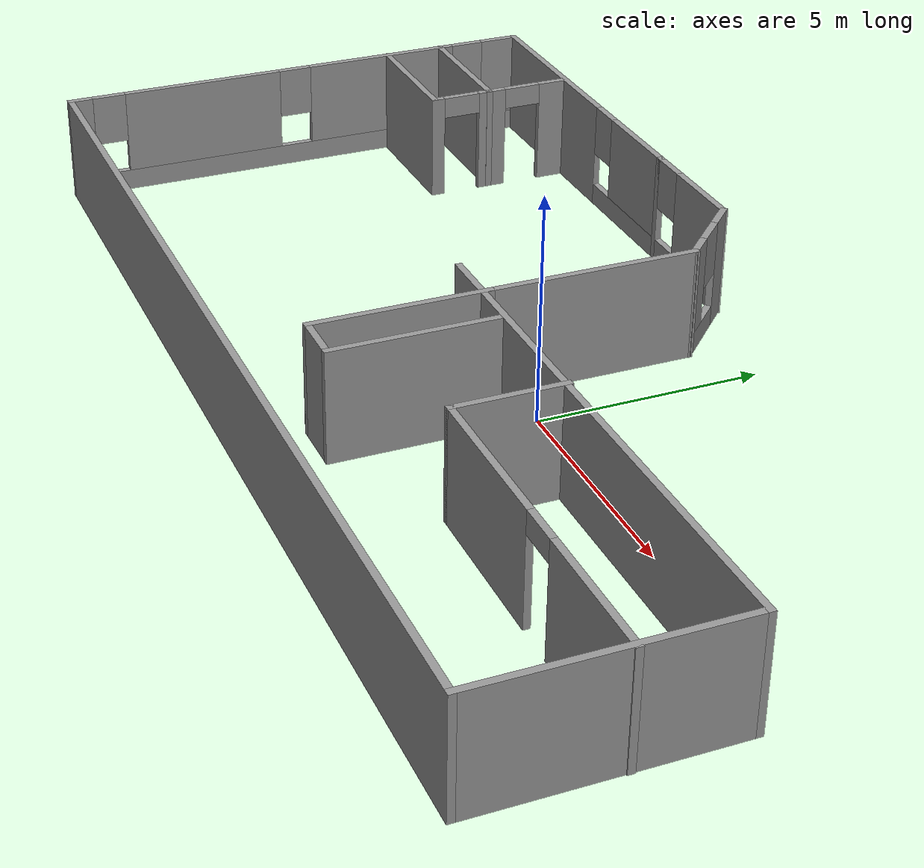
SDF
<?xml version='1.0'?>
<sdf version='1.7'>
  <model name='coffeeShop'>
    <pose>-1.8585 -0.230844 0 0 -0 0</pose>
    <link name='Wall_0'>
      <collision name='Wall_0_Collision'>
        <geometry>
          <box>
            <size>12.5 0.15 2.5</size>
          </box>
        </geometry>
        <pose>0 0 1.25 0 -0 0</pose>
      </collision>
      <visual name='Wall_0_Visual'>
        <pose>0 0 1.25 0 -0 0</pose>
        <geometry>
          <box>
            <size>12.5 0.15 2.5</size>
          </box>
        </geometry>
        <material>
          <script>
            <uri>file://media/materials/scripts/gazebo.material</uri>
            <name>Gazebo/Grey</name>
          </script>
          <ambient>1 1 1 1</ambient>
        </material>
        <meta>
          <layer>0</layer>
        </meta>
      </visual>
      <pose>5.61764 -0.465533 0 0 -0 0</pose>
    </link>
    <link name='Wall_13'>
      <pose>-0.114902 5.042 0 0 -0 -0.785398</pose>
      <visual name='Wall_13_Visual_0'>
        <pose>-0.748775 0 1.25 0 -0 0</pose>
        <geometry>
          <box>
            <size>0.752449 0.15 2.5</size>
          </box>
        </geometry>
        <material>
          <script>
            <uri>file://media/materials/scripts/gazebo.material</uri>
            <name>Gazebo/Grey</name>
          </script>
          <ambient>1 1 1 1</ambient>
        </material>
        <meta>
          <layer>0</layer>
        </meta>
      </visual>
      <collision name='Wall_13_Collision_0'>
        <geometry>
          <box>
            <size>0.752449 0.15 2.5</size>
          </box>
        </geometry>
        <pose>-0.748775 0 1.25 0 -0 0</pose>
      </collision>
      <visual name='Wall_13_Visual_1'>
        <pose>0.376225 0 0.25 0 -0 0</pose>
        <geometry>
          <box>
            <size>1.49755 0.15 0.5</size>
          </box>
        </geometry>
        <material>
          <script>
            <uri>file://media/materials/scripts/gazebo.material</uri>
            <name>Gazebo/Grey</name>
          </script>
          <ambient>1 1 1 1</ambient>
        </material>
        <meta>
          <layer>0</layer>
        </meta>
      </visual>
      <collision name='Wall_13_Collision_1'>
        <geometry>
          <box>
            <size>1.49755 0.15 0.5</size>
          </box>
        </geometry>
        <pose>0.376225 0 0.25 0 -0 0</pose>
      </collision>
      <visual name='Wall_13_Visual_2'>
        <pose>0.776225 0 1.5 0 -0 0</pose>
        <geometry>
          <box>
            <size>0.697551 0.15 2</size>
          </box>
        </geometry>
        <material>
          <script>
            <uri>file://media/materials/scripts/gazebo.material</uri>
            <name>Gazebo/Grey</name>
          </script>
          <ambient>1 1 1 1</ambient>
        </material>
        <meta>
          <layer>0</layer>
        </meta>
      </visual>
      <collision name='Wall_13_Collision_2'>
        <geometry>
          <box>
            <size>0.697551 0.15 2</size>
          </box>
        </geometry>
        <pose>0.776225 0 1.5 0 -0 0</pose>
      </collision>
      <visual name='Wall_13_Visual_3'>
        <pose>0.027449 0 1.9 0 -0 0</pose>
        <geometry>
          <box>
            <size>0.8 0.15 1.2</size>
          </box>
        </geometry>
        <material>
          <script>
            <uri>file://media/materials/scripts/gazebo.material</uri>
            <name>Gazebo/Grey</name>
          </script>
          <ambient>1 1 1 1</ambient>
        </material>
        <meta>
          <layer>0</layer>
        </meta>
      </visual>
      <collision name='Wall_13_Collision_3'>
        <geometry>
          <box>
            <size>0.8 0.15 1.2</size>
          </box>
        </geometry>
        <pose>0.027449 0 1.9 0 -0 0</pose>
      </collision>
    </link>
    <link name='Wall_14'>
      <collision name='Wall_14_Collision'>
        <geometry>
          <box>
            <size>4.75 0.15 2.5</size>
          </box>
        </geometry>
        <pose>0 0 1.25 0 -0 0</pose>
      </collision>
      <visual name='Wall_14_Visual'>
        <pose>0 0 1.25 0 -0 0</pose>
        <geometry>
          <box>
            <size>4.75 0.15 2.5</size>
          </box>
        </geometry>
        <material>
          <script>
            <uri>file://media/materials/scripts/gazebo.material</uri>
            <name>Gazebo/Grey</name>
          </script>
          <ambient>1 1 1 1</ambient>
        </material>
        <meta>
          <layer>0</layer>
        </meta>
      </visual>
      <pose>0.62756 1.99954 0 0 -0 -1.5708</pose>
    </link>
    <link name='Wall_16'>
      <collision name='Wall_16_Collision'>
        <geometry>
          <box>
            <size>2.5 0.15 2.5</size>
          </box>
        </geometry>
        <pose>0 0 1.25 0 -0 0</pose>
      </collision>
      <visual name='Wall_16_Visual'>
        <pose>0 0 1.25 0 -0 0</pose>
        <geometry>
          <box>
            <size>2.5 0.15 2.5</size>
          </box>
        </geometry>
        <material>
          <script>
            <uri>file://media/materials/scripts/gazebo.material</uri>
            <name>Gazebo/Grey</name>
          </script>
          <ambient>1 1 1 1</ambient>
        </material>
        <meta>
          <layer>0</layer>
        </meta>
      </visual>
      <pose>4.46826 -1.59552 0 0 -0 -1.5708</pose>
    </link>
    <link name='Wall_17'>
      <pose>8.14326 -2.77052 0 0 -0 0</pose>
      <visual name='Wall_17_Visual_0'>
        <pose>-1.97483 0 1.25 0 -0 0</pose>
        <geometry>
          <box>
            <size>3.55033 0.15 2.5</size>
          </box>
        </geometry>
        <material>
          <script>
            <uri>file://media/materials/scripts/gazebo.material</uri>
            <name>Gazebo/Grey</name>
          </script>
          <ambient>1 1 1 1</ambient>
        </material>
        <meta>
          <layer>0</layer>
        </meta>
      </visual>
      <collision name='Wall_17_Collision_0'>
        <geometry>
          <box>
            <size>3.55033 0.15 2.5</size>
          </box>
        </geometry>
        <pose>-1.97483 0 1.25 0 -0 0</pose>
      </collision>
      <visual name='Wall_17_Visual_1'>
        <pose>2.22517 0 1.25 0 -0 0</pose>
        <geometry>
          <box>
            <size>3.04967 0.15 2.5</size>
          </box>
        </geometry>
        <material>
          <script>
            <uri>file://media/materials/scripts/gazebo.material</uri>
            <name>Gazebo/Grey</name>
          </script>
          <ambient>1 1 1 1</ambient>
        </material>
        <meta>
          <layer>0</layer>
        </meta>
      </visual>
      <collision name='Wall_17_Collision_1'>
        <geometry>
          <box>
            <size>3.04967 0.15 2.5</size>
          </box>
        </geometry>
        <pose>2.22517 0 1.25 0 -0 0</pose>
      </collision>
      <visual name='Wall_17_Visual_2'>
        <pose>0.250333 0 2.25 0 -0 0</pose>
        <geometry>
          <box>
            <size>0.9 0.15 0.5</size>
          </box>
        </geometry>
        <material>
          <script>
            <uri>file://media/materials/scripts/gazebo.material</uri>
            <name>Gazebo/Grey</name>
          </script>
          <ambient>1 1 1 1</ambient>
        </material>
        <meta>
          <layer>0</layer>
        </meta>
      </visual>
      <collision name='Wall_17_Collision_2'>
        <geometry>
          <box>
            <size>0.9 0.15 0.5</size>
          </box>
        </geometry>
        <pose>0.250333 0 2.25 0 -0 0</pose>
      </collision>
    </link>
    <link name='Wall_19'>
      <collision name='Wall_19_Collision'>
        <geometry>
          <box>
            <size>4 0.15 2.5</size>
          </box>
        </geometry>
        <pose>0 0 1.25 0 -0 0</pose>
      </collision>
      <visual name='Wall_19_Visual'>
        <pose>0 0 1.25 0 -0 0</pose>
        <geometry>
          <box>
            <size>4 0.15 2.5</size>
          </box>
        </geometry>
        <material>
          <script>
            <uri>file://media/materials/scripts/gazebo.material</uri>
            <name>Gazebo/Grey</name>
          </script>
          <ambient>1 1 1 1</ambient>
        </material>
        <meta>
          <layer>0</layer>
        </meta>
      </visual>
      <pose>0.62756 -2.22546 0 0 -0 -1.5708</pose>
    </link>
    <link name='Wall_2'>
      <collision name='Wall_2_Collision'>
        <geometry>
          <box>
            <size>5.5 0.15 2.5</size>
          </box>
        </geometry>
        <pose>0 0 1.25 0 -0 0</pose>
      </collision>
      <visual name='Wall_2_Visual'>
        <pose>0 0 1.25 0 -0 0</pose>
        <geometry>
          <box>
            <size>5.5 0.15 2.5</size>
          </box>
        </geometry>
        <material>
          <script>
            <uri>file://media/materials/scripts/gazebo.material</uri>
            <name>Gazebo/Grey</name>
          </script>
          <ambient>1 1 1 1</ambient>
        </material>
        <meta>
          <layer>0</layer>
        </meta>
      </visual>
      <pose>11.7926 -3.14053 0 0 -0 -1.5708</pose>
    </link>
    <link name='Wall_20'>
      <collision name='Wall_20_Collision'>
        <geometry>
          <box>
            <size>1.25 0.15 2.5</size>
          </box>
        </geometry>
        <pose>0 0 1.25 0 -0 0</pose>
      </collision>
      <visual name='Wall_20_Visual'>
        <pose>0 0 1.25 0 -0 0</pose>
        <geometry>
          <box>
            <size>1.25 0.15 2.5</size>
          </box>
        </geometry>
        <material>
          <script>
            <uri>file://media/materials/scripts/gazebo.material</uri>
            <name>Gazebo/Grey</name>
          </script>
          <ambient>1 1 1 1</ambient>
        </material>
        <meta>
          <layer>0</layer>
        </meta>
      </visual>
      <pose>1.17756 -4.15046 0 0 -0 0</pose>
    </link>
    <link name='Wall_21'>
      <collision name='Wall_21_Collision'>
        <geometry>
          <box>
            <size>3.75 0.15 2.5</size>
          </box>
        </geometry>
        <pose>0 0 1.25 0 -0 0</pose>
      </collision>
      <visual name='Wall_21_Visual'>
        <pose>0 0 1.25 0 -0 0</pose>
        <geometry>
          <box>
            <size>3.75 0.15 2.5</size>
          </box>
        </geometry>
        <material>
          <script>
            <uri>file://media/materials/scripts/gazebo.material</uri>
            <name>Gazebo/Grey</name>
          </script>
          <ambient>1 1 1 1</ambient>
        </material>
        <meta>
          <layer>0</layer>
        </meta>
      </visual>
      <pose>1.72756 -2.35046 0 0 -0 1.5708</pose>
    </link>
    <link name='Wall_23'>
      <collision name='Wall_23_Collision'>
        <geometry>
          <box>
            <size>3.25 0.15 2.5</size>
          </box>
        </geometry>
        <pose>0 0 1.25 0 -0 0</pose>
      </collision>
      <visual name='Wall_23_Visual'>
        <pose>0 0 1.25 0 -0 0</pose>
        <geometry>
          <box>
            <size>3.25 0.15 2.5</size>
          </box>
        </geometry>
        <material>
          <script>
            <uri>file://media/materials/scripts/gazebo.material</uri>
            <name>Gazebo/Grey</name>
          </script>
          <ambient>1 1 1 1</ambient>
        </material>
        <meta>
          <layer>0</layer>
        </meta>
      </visual>
      <pose>-10.2683 2.31457 0 0 -0 0</pose>
    </link>
    <link name='Wall_24'>
      <pose>-8.71826 3.98957 0 0 -0 1.5708</pose>
      <visual name='Wall_24_Visual_0'>
        <pose>-1.58833 0 1.25 0 -0 0</pose>
        <geometry>
          <box>
            <size>0.323337 0.15 2.5</size>
          </box>
        </geometry>
        <material>
          <script>
            <uri>file://media/materials/scripts/gazebo.material</uri>
            <name>Gazebo/Grey</name>
          </script>
          <ambient>1 1 1 1</ambient>
        </material>
        <meta>
          <layer>0</layer>
        </meta>
      </visual>
      <collision name='Wall_24_Collision_0'>
        <geometry>
          <box>
            <size>0.323337 0.15 2.5</size>
          </box>
        </geometry>
        <pose>-1.58833 0 1.25 0 -0 0</pose>
      </collision>
      <visual name='Wall_24_Visual_1'>
        <pose>-0.180729 0 1.25 0 -0 0</pose>
        <geometry>
          <box>
            <size>0.691869 0.15 2.5</size>
          </box>
        </geometry>
        <material>
          <script>
            <uri>file://media/materials/scripts/gazebo.material</uri>
            <name>Gazebo/Grey</name>
          </script>
          <ambient>1 1 1 1</ambient>
        </material>
        <meta>
          <layer>0</layer>
        </meta>
      </visual>
      <collision name='Wall_24_Collision_1'>
        <geometry>
          <box>
            <size>0.691869 0.15 2.5</size>
          </box>
        </geometry>
        <pose>-0.180729 0 1.25 0 -0 0</pose>
      </collision>
      <visual name='Wall_24_Visual_2'>
        <pose>1.4076 0 1.25 0 -0 0</pose>
        <geometry>
          <box>
            <size>0.684794 0.15 2.5</size>
          </box>
        </geometry>
        <material>
          <script>
            <uri>file://media/materials/scripts/gazebo.material</uri>
            <name>Gazebo/Grey</name>
          </script>
          <ambient>1 1 1 1</ambient>
        </material>
        <meta>
          <layer>0</layer>
        </meta>
      </visual>
      <collision name='Wall_24_Collision_2'>
        <geometry>
          <box>
            <size>0.684794 0.15 2.5</size>
          </box>
        </geometry>
        <pose>1.4076 0 1.25 0 -0 0</pose>
      </collision>
      <visual name='Wall_24_Visual_3'>
        <pose>-0.976663 0 2.25 0 -0 0</pose>
        <geometry>
          <box>
            <size>0.9 0.15 0.5</size>
          </box>
        </geometry>
        <material>
          <script>
            <uri>file://media/materials/scripts/gazebo.material</uri>
            <name>Gazebo/Grey</name>
          </script>
          <ambient>1 1 1 1</ambient>
        </material>
        <meta>
          <layer>0</layer>
        </meta>
      </visual>
      <collision name='Wall_24_Collision_3'>
        <geometry>
          <box>
            <size>0.9 0.15 0.5</size>
          </box>
        </geometry>
        <pose>-0.976663 0 2.25 0 -0 0</pose>
      </collision>
      <visual name='Wall_24_Visual_4'>
        <pose>0.615206 0 2.25 0 -0 0</pose>
        <geometry>
          <box>
            <size>0.9 0.15 0.5</size>
          </box>
        </geometry>
        <material>
          <script>
            <uri>file://media/materials/scripts/gazebo.material</uri>
            <name>Gazebo/Grey</name>
          </script>
          <ambient>1 1 1 1</ambient>
        </material>
        <meta>
          <layer>0</layer>
        </meta>
      </visual>
      <collision name='Wall_24_Collision_4'>
        <geometry>
          <box>
            <size>0.9 0.15 0.5</size>
          </box>
        </geometry>
        <pose>0.615206 0 2.25 0 -0 0</pose>
      </collision>
    </link>
    <link name='Wall_3'>
      <collision name='Wall_3_Collision'>
        <geometry>
          <box>
            <size>23.75 0.15 2.5</size>
          </box>
        </geometry>
        <pose>0 0 1.25 0 -0 0</pose>
      </collision>
      <visual name='Wall_3_Visual'>
        <pose>0 0 1.25 0 -0 0</pose>
        <geometry>
          <box>
            <size>23.75 0.15 2.5</size>
          </box>
        </geometry>
        <material>
          <script>
            <uri>file://media/materials/scripts/gazebo.material</uri>
            <name>Gazebo/Grey</name>
          </script>
          <ambient>1 1 1 1</ambient>
        </material>
        <meta>
          <layer>0</layer>
        </meta>
      </visual>
      <pose>-0.007364 -5.81553 0 0 -0 3.14159</pose>
    </link>
    <link name='Wall_33'>
      <collision name='Wall_33_Collision'>
        <geometry>
          <box>
            <size>3.25 0.15 2.5</size>
          </box>
        </geometry>
        <pose>0 0 1.25 0 -0 0</pose>
      </collision>
      <visual name='Wall_33_Visual'>
        <pose>0 0 1.25 0 -0 0</pose>
        <geometry>
          <box>
            <size>3.25 0.15 2.5</size>
          </box>
        </geometry>
        <material>
          <script>
            <uri>file://media/materials/scripts/gazebo.material</uri>
            <name>Gazebo/Grey</name>
          </script>
          <ambient>1 1 1 1</ambient>
        </material>
        <meta>
          <layer>0</layer>
        </meta>
      </visual>
      <pose>-10.2656 3.74062 0 0 -0 0</pose>
    </link>
    <link name='Wall_4'>
      <pose>-11.8074 -0.015533 0 0 -0 1.5708</pose>
      <visual name='Wall_4_Visual_0'>
        <pose>-5.57866 0 1.25 0 -0 0</pose>
        <geometry>
          <box>
            <size>0.592676 0.15 2.5</size>
          </box>
        </geometry>
        <material>
          <script>
            <uri>file://media/materials/scripts/gazebo.material</uri>
            <name>Gazebo/Grey</name>
          </script>
          <ambient>1 1 1 1</ambient>
        </material>
        <meta>
          <layer>0</layer>
        </meta>
      </visual>
      <collision name='Wall_4_Collision_0'>
        <geometry>
          <box>
            <size>0.592676 0.15 2.5</size>
          </box>
        </geometry>
        <pose>-5.57866 0 1.25 0 -0 0</pose>
      </collision>
      <visual name='Wall_4_Visual_1'>
        <pose>0.296338 0 0.25 0 -0 0</pose>
        <geometry>
          <box>
            <size>11.1573 0.15 0.5</size>
          </box>
        </geometry>
        <material>
          <script>
            <uri>file://media/materials/scripts/gazebo.material</uri>
            <name>Gazebo/Grey</name>
          </script>
          <ambient>1 1 1 1</ambient>
        </material>
        <meta>
          <layer>0</layer>
        </meta>
      </visual>
      <collision name='Wall_4_Collision_1'>
        <geometry>
          <box>
            <size>11.1573 0.15 0.5</size>
          </box>
        </geometry>
        <pose>0.296338 0 0.25 0 -0 0</pose>
      </collision>
      <visual name='Wall_4_Visual_2'>
        <pose>-2.52099 0 1.5 0 -0 0</pose>
        <geometry>
          <box>
            <size>3.92267 0.15 2</size>
          </box>
        </geometry>
        <material>
          <script>
            <uri>file://media/materials/scripts/gazebo.material</uri>
            <name>Gazebo/Grey</name>
          </script>
          <ambient>1 1 1 1</ambient>
        </material>
        <meta>
          <layer>0</layer>
        </meta>
      </visual>
      <collision name='Wall_4_Collision_2'>
        <geometry>
          <box>
            <size>3.92267 0.15 2</size>
          </box>
        </geometry>
        <pose>-2.52099 0 1.5 0 -0 0</pose>
      </collision>
      <visual name='Wall_4_Visual_3'>
        <pose>2.15568 0 1.5 0 -0 0</pose>
        <geometry>
          <box>
            <size>3.83067 0.15 2</size>
          </box>
        </geometry>
        <material>
          <script>
            <uri>file://media/materials/scripts/gazebo.material</uri>
            <name>Gazebo/Grey</name>
          </script>
          <ambient>1 1 1 1</ambient>
        </material>
        <meta>
          <layer>0</layer>
        </meta>
      </visual>
      <collision name='Wall_4_Collision_3'>
        <geometry>
          <box>
            <size>3.83067 0.15 2</size>
          </box>
        </geometry>
        <pose>2.15568 0 1.5 0 -0 0</pose>
      </collision>
      <visual name='Wall_4_Visual_4'>
        <pose>5.37301 0 1.5 0 -0 0</pose>
        <geometry>
          <box>
            <size>1.00399 0.15 2</size>
          </box>
        </geometry>
        <material>
          <script>
            <uri>file://media/materials/scripts/gazebo.material</uri>
            <name>Gazebo/Grey</name>
          </script>
          <ambient>1 1 1 1</ambient>
        </material>
        <meta>
          <layer>0</layer>
        </meta>
      </visual>
      <collision name='Wall_4_Collision_4'>
        <geometry>
          <box>
            <size>1.00399 0.15 2</size>
          </box>
        </geometry>
        <pose>5.37301 0 1.5 0 -0 0</pose>
      </collision>
      <visual name='Wall_4_Visual_5'>
        <pose>-4.88232 0 1.9 0 -0 0</pose>
        <geometry>
          <box>
            <size>0.8 0.15 1.2</size>
          </box>
        </geometry>
        <material>
          <script>
            <uri>file://media/materials/scripts/gazebo.material</uri>
            <name>Gazebo/Grey</name>
          </script>
          <ambient>1 1 1 1</ambient>
        </material>
        <meta>
          <layer>0</layer>
        </meta>
      </visual>
      <collision name='Wall_4_Collision_5'>
        <geometry>
          <box>
            <size>0.8 0.15 1.2</size>
          </box>
        </geometry>
        <pose>-4.88232 0 1.9 0 -0 0</pose>
      </collision>
      <visual name='Wall_4_Visual_6'>
        <pose>-0.159657 0 1.9 0 -0 0</pose>
        <geometry>
          <box>
            <size>0.8 0.15 1.2</size>
          </box>
        </geometry>
        <material>
          <script>
            <uri>file://media/materials/scripts/gazebo.material</uri>
            <name>Gazebo/Grey</name>
          </script>
          <ambient>1 1 1 1</ambient>
        </material>
        <meta>
          <layer>0</layer>
        </meta>
      </visual>
      <collision name='Wall_4_Collision_6'>
        <geometry>
          <box>
            <size>0.8 0.15 1.2</size>
          </box>
        </geometry>
        <pose>-0.159657 0 1.9 0 -0 0</pose>
      </collision>
      <visual name='Wall_4_Visual_7'>
        <pose>4.47101 0 1.9 0 -0 0</pose>
        <geometry>
          <box>
            <size>0.8 0.15 1.2</size>
          </box>
        </geometry>
        <material>
          <script>
            <uri>file://media/materials/scripts/gazebo.material</uri>
            <name>Gazebo/Grey</name>
          </script>
          <ambient>1 1 1 1</ambient>
        </material>
        <meta>
          <layer>0</layer>
        </meta>
      </visual>
      <collision name='Wall_4_Collision_7'>
        <geometry>
          <box>
            <size>0.8 0.15 1.2</size>
          </box>
        </geometry>
        <pose>4.47101 0 1.9 0 -0 0</pose>
      </collision>
    </link>
    <link name='Wall_5'>
      <pose>-7.75736 5.78447 0 0 -0 0</pose>
      <visual name='Wall_5_Visual_0'>
        <pose>-1.5968 0 1.25 0 -0 0</pose>
        <geometry>
          <box>
            <size>5.05639 0.15 2.5</size>
          </box>
        </geometry>
        <material>
          <script>
            <uri>file://media/materials/scripts/gazebo.material</uri>
            <name>Gazebo/Grey</name>
          </script>
          <ambient>1 1 1 1</ambient>
        </material>
        <meta>
          <layer>0</layer>
        </meta>
      </visual>
      <collision name='Wall_5_Collision_0'>
        <geometry>
          <box>
            <size>5.05639 0.15 2.5</size>
          </box>
        </geometry>
        <pose>-1.5968 0 1.25 0 -0 0</pose>
      </collision>
      <visual name='Wall_5_Visual_1'>
        <pose>2.5282 0 0.25 0 -0 0</pose>
        <geometry>
          <box>
            <size>3.19361 0.15 0.5</size>
          </box>
        </geometry>
        <material>
          <script>
            <uri>file://media/materials/scripts/gazebo.material</uri>
            <name>Gazebo/Grey</name>
          </script>
          <ambient>1 1 1 1</ambient>
        </material>
        <meta>
          <layer>0</layer>
        </meta>
      </visual>
      <collision name='Wall_5_Collision_1'>
        <geometry>
          <box>
            <size>3.19361 0.15 0.5</size>
          </box>
        </geometry>
        <pose>2.5282 0 0.25 0 -0 0</pose>
      </collision>
      <visual name='Wall_5_Visual_2'>
        <pose>2.9282 0 1.5 0 -0 0</pose>
        <geometry>
          <box>
            <size>2.39361 0.15 2</size>
          </box>
        </geometry>
        <material>
          <script>
            <uri>file://media/materials/scripts/gazebo.material</uri>
            <name>Gazebo/Grey</name>
          </script>
          <ambient>1 1 1 1</ambient>
        </material>
        <meta>
          <layer>0</layer>
        </meta>
      </visual>
      <collision name='Wall_5_Collision_2'>
        <geometry>
          <box>
            <size>2.39361 0.15 2</size>
          </box>
        </geometry>
        <pose>2.9282 0 1.5 0 -0 0</pose>
      </collision>
      <visual name='Wall_5_Visual_3'>
        <pose>1.33139 0 1.9 0 -0 0</pose>
        <geometry>
          <box>
            <size>0.8 0.15 1.2</size>
          </box>
        </geometry>
        <material>
          <script>
            <uri>file://media/materials/scripts/gazebo.material</uri>
            <name>Gazebo/Grey</name>
          </script>
          <ambient>1 1 1 1</ambient>
        </material>
        <meta>
          <layer>0</layer>
        </meta>
      </visual>
      <collision name='Wall_5_Collision_3'>
        <geometry>
          <box>
            <size>0.8 0.15 1.2</size>
          </box>
        </geometry>
        <pose>1.33139 0 1.9 0 -0 0</pose>
      </collision>
    </link>
    <link name='Wall_7'>
      <pose>-2.28236 5.78447 0 0 -0 0</pose>
      <visual name='Wall_7_Visual_0'>
        <pose>-1.41856 0 1.25 0 -0 0</pose>
        <geometry>
          <box>
            <size>0.162872 0.15 2.5</size>
          </box>
        </geometry>
        <material>
          <script>
            <uri>file://media/materials/scripts/gazebo.material</uri>
            <name>Gazebo/Grey</name>
          </script>
          <ambient>1 1 1 1</ambient>
        </material>
        <meta>
          <layer>0</layer>
        </meta>
      </visual>
      <collision name='Wall_7_Collision_0'>
        <geometry>
          <box>
            <size>0.162872 0.15 2.5</size>
          </box>
        </geometry>
        <pose>-1.41856 0 1.25 0 -0 0</pose>
      </collision>
      <visual name='Wall_7_Visual_1'>
        <pose>0.081436 0 0.25 0 -0 0</pose>
        <geometry>
          <box>
            <size>2.83713 0.15 0.5</size>
          </box>
        </geometry>
        <material>
          <script>
            <uri>file://media/materials/scripts/gazebo.material</uri>
            <name>Gazebo/Grey</name>
          </script>
          <ambient>1 1 1 1</ambient>
        </material>
        <meta>
          <layer>0</layer>
        </meta>
      </visual>
      <collision name='Wall_7_Collision_1'>
        <geometry>
          <box>
            <size>2.83713 0.15 0.5</size>
          </box>
        </geometry>
        <pose>0.081436 0 0.25 0 -0 0</pose>
      </collision>
      <visual name='Wall_7_Visual_2'>
        <pose>0.481436 0 1.5 0 -0 0</pose>
        <geometry>
          <box>
            <size>2.03713 0.15 2</size>
          </box>
        </geometry>
        <material>
          <script>
            <uri>file://media/materials/scripts/gazebo.material</uri>
            <name>Gazebo/Grey</name>
          </script>
          <ambient>1 1 1 1</ambient>
        </material>
        <meta>
          <layer>0</layer>
        </meta>
      </visual>
      <collision name='Wall_7_Collision_2'>
        <geometry>
          <box>
            <size>2.03713 0.15 2</size>
          </box>
        </geometry>
        <pose>0.481436 0 1.5 0 -0 0</pose>
      </collision>
      <visual name='Wall_7_Visual_3'>
        <pose>-0.937128 0 1.9 0 -0 0</pose>
        <geometry>
          <box>
            <size>0.8 0.15 1.2</size>
          </box>
        </geometry>
        <material>
          <script>
            <uri>file://media/materials/scripts/gazebo.material</uri>
            <name>Gazebo/Grey</name>
          </script>
          <ambient>1 1 1 1</ambient>
        </material>
        <meta>
          <layer>0</layer>
        </meta>
      </visual>
      <collision name='Wall_7_Collision_3'>
        <geometry>
          <box>
            <size>0.8 0.15 1.2</size>
          </box>
        </geometry>
        <pose>-0.937128 0 1.9 0 -0 0</pose>
      </collision>
    </link>
    <static>1</static>
  </model>
</sdf>
